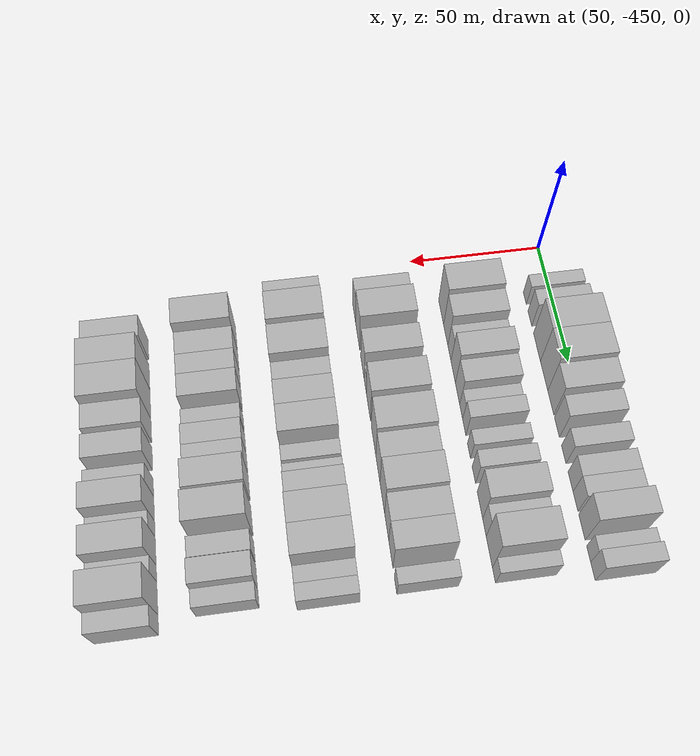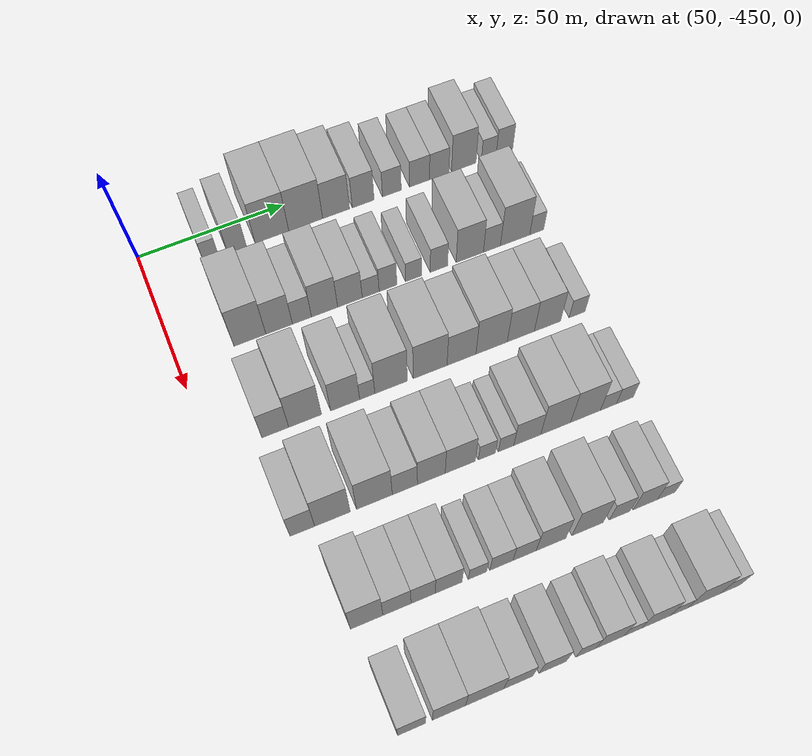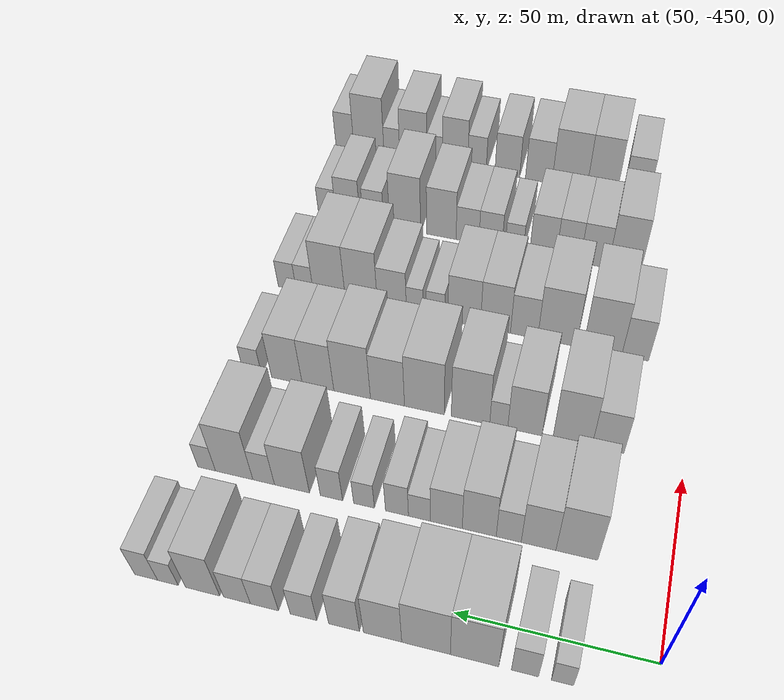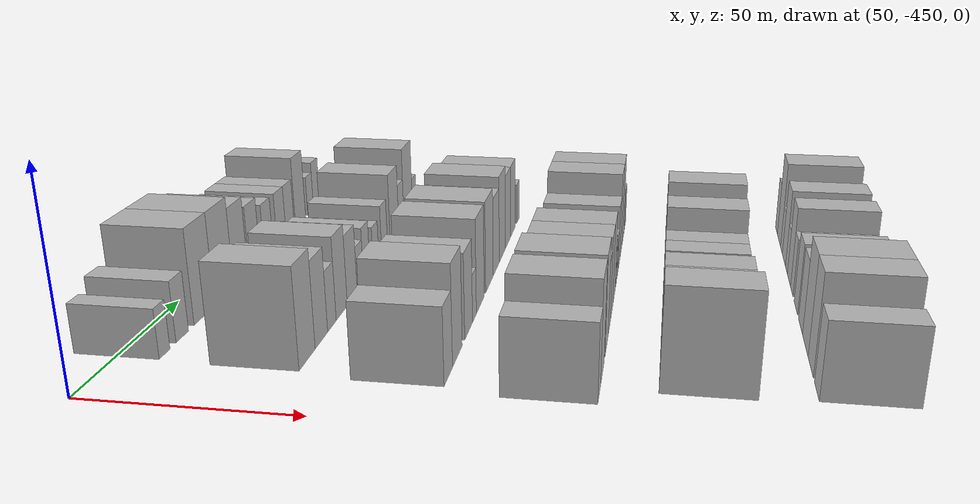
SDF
<sdf version="1.6">
 <world name="default">
  <model name="building_14">
   <static>1</static>
   <pose>50.0000 -428.2487 0 0.000000 0.000000 0.000000</pose>
   <link name="link">
    <pose>0 0 6.00 0 0 0</pose>
    <collision name="collision"><geometry><box><size>20.0000 5.2376 12.0000</size></box></geometry></collision>
    <visual name="visual">
     <cast_shadows>0</cast_shadows>
     <geometry><box><size>20.0000 5.2376 12.0000</size></box></geometry>
     <material>
      <script>
       <uri>model://HANNAS_wall/materials/scripts</uri>
       <uri>model://HANNAS_wall/materials/textures</uri>
       <name>vrc/HANNAS_wall</name>
      </script>
     </material>
    </visual>
   </link>
  </model>
  <model name="building_15">
   <static>1</static>
   <pose>50.0000 -419.3924 0 0.000000 0.000000 0.000000</pose>
   <link name="link">
    <pose>0 0 7.50 0 0 0</pose>
    <collision name="collision"><geometry><box><size>20.0000 6.4750 15.0000</size></box></geometry></collision>
    <visual name="visual">
     <cast_shadows>0</cast_shadows>
     <geometry><box><size>20.0000 6.4750 15.0000</size></box></geometry>
     <material>
      <script>
       <uri>model://HANNAS_wall/materials/scripts</uri>
       <uri>model://HANNAS_wall/materials/textures</uri>
       <name>vrc/HANNAS_wall</name>
      </script>
     </material>
    </visual>
   </link>
  </model>
  <model name="building_16">
   <static>1</static>
   <pose>50.0000 -407.3200 0 0.000000 0.000000 0.000000</pose>
   <link name="link">
    <pose>0 0 12.00 0 0 0</pose>
    <collision name="collision"><geometry><box><size>20.0000 11.6699 24.0000</size></box></geometry></collision>
    <visual name="visual">
     <cast_shadows>0</cast_shadows>
     <geometry><box><size>20.0000 11.6699 24.0000</size></box></geometry>
     <material>
      <script>
       <uri>model://HANNAS_wall/materials/scripts</uri>
       <uri>model://HANNAS_wall/materials/textures</uri>
       <name>vrc/HANNAS_wall</name>
      </script>
     </material>
    </visual>
   </link>
  </model>
  <model name="building_17">
   <static>1</static>
   <pose>50.0000 -395.5400 0 0.000000 0.000000 0.000000</pose>
   <link name="link">
    <pose>0 0 12.00 0 0 0</pose>
    <collision name="collision"><geometry><box><size>20.0000 11.8899 24.0000</size></box></geometry></collision>
    <visual name="visual">
     <cast_shadows>0</cast_shadows>
     <geometry><box><size>20.0000 11.8899 24.0000</size></box></geometry>
     <material>
      <script>
       <uri>model://HANNAS_wall/materials/scripts</uri>
       <uri>model://HANNAS_wall/materials/textures</uri>
       <name>vrc/HANNAS_wall</name>
      </script>
     </material>
    </visual>
   </link>
  </model>
  <model name="building_18">
   <static>1</static>
   <pose>50.0000 -384.8482 0 0.000000 0.000000 0.000000</pose>
   <link name="link">
    <pose>0 0 10.50 0 0 0</pose>
    <collision name="collision"><geometry><box><size>20.0000 9.4937 21.0000</size></box></geometry></collision>
    <visual name="visual">
     <cast_shadows>0</cast_shadows>
     <geometry><box><size>20.0000 9.4937 21.0000</size></box></geometry>
     <material>
      <script>
       <uri>model://HANNAS_wall/materials/scripts</uri>
       <uri>model://HANNAS_wall/materials/textures</uri>
       <name>vrc/HANNAS_wall</name>
      </script>
     </material>
    </visual>
   </link>
  </model>
  <model name="building_19">
   <static>1</static>
   <pose>50.0000 -375.2395 0 0.000000 0.000000 0.000000</pose>
   <link name="link">
    <pose>0 0 9.00 0 0 0</pose>
    <collision name="collision"><geometry><box><size>20.0000 7.7238 18.0000</size></box></geometry></collision>
    <visual name="visual">
     <cast_shadows>0</cast_shadows>
     <geometry><box><size>20.0000 7.7238 18.0000</size></box></geometry>
     <material>
      <script>
       <uri>model://HANNAS_wall/materials/scripts</uri>
       <uri>model://HANNAS_wall/materials/textures</uri>
       <name>vrc/HANNAS_wall</name>
      </script>
     </material>
    </visual>
   </link>
  </model>
  <model name="building_20">
   <static>1</static>
   <pose>50.0000 -365.0089 0 0.000000 0.000000 0.000000</pose>
   <link name="link">
    <pose>0 0 7.50 0 0 0</pose>
    <collision name="collision"><geometry><box><size>20.0000 6.7373 15.0000</size></box></geometry></collision>
    <visual name="visual">
     <cast_shadows>0</cast_shadows>
     <geometry><box><size>20.0000 6.7373 15.0000</size></box></geometry>
     <material>
      <script>
       <uri>model://HANNAS_wall/materials/scripts</uri>
       <uri>model://HANNAS_wall/materials/textures</uri>
       <name>vrc/HANNAS_wall</name>
      </script>
     </material>
    </visual>
   </link>
  </model>
  <model name="building_21">
   <static>1</static>
   <pose>50.0000 -355.0203 0 0.000000 0.000000 0.000000</pose>
   <link name="link">
    <pose>0 0 7.50 0 0 0</pose>
    <collision name="collision"><geometry><box><size>20.0000 7.2400 15.0000</size></box></geometry></collision>
    <visual name="visual">
     <cast_shadows>0</cast_shadows>
     <geometry><box><size>20.0000 7.2400 15.0000</size></box></geometry>
     <material>
      <script>
       <uri>model://HANNAS_wall/materials/scripts</uri>
       <uri>model://HANNAS_wall/materials/textures</uri>
       <name>vrc/HANNAS_wall</name>
      </script>
     </material>
    </visual>
   </link>
  </model>
  <model name="building_22">
   <static>1</static>
   <pose>50.0000 -347.9140 0 0.000000 0.000000 0.000000</pose>
   <link name="link">
    <pose>0 0 7.50 0 0 0</pose>
    <collision name="collision"><geometry><box><size>20.0000 6.9727 15.0000</size></box></geometry></collision>
    <visual name="visual">
     <cast_shadows>0</cast_shadows>
     <geometry><box><size>20.0000 6.9727 15.0000</size></box></geometry>
     <material>
      <script>
       <uri>model://HANNAS_wall/materials/scripts</uri>
       <uri>model://HANNAS_wall/materials/textures</uri>
       <name>vrc/HANNAS_wall</name>
      </script>
     </material>
    </visual>
   </link>
  </model>
  <model name="building_23">
   <static>1</static>
   <pose>50.0000 -338.9517 0 0.000000 0.000000 0.000000</pose>
   <link name="link">
    <pose>0 0 10.50 0 0 0</pose>
    <collision name="collision"><geometry><box><size>20.0000 8.9519 21.0000</size></box></geometry></collision>
    <visual name="visual">
     <cast_shadows>0</cast_shadows>
     <geometry><box><size>20.0000 8.9519 21.0000</size></box></geometry>
     <material>
      <script>
       <uri>model://HANNAS_wall/materials/scripts</uri>
       <uri>model://HANNAS_wall/materials/textures</uri>
       <name>vrc/HANNAS_wall</name>
      </script>
     </material>
    </visual>
   </link>
  </model>
  <model name="building_24">
   <static>1</static>
   <pose>50.0000 -329.7547 0 0.000000 0.000000 0.000000</pose>
   <link name="link">
    <pose>0 0 6.00 0 0 0</pose>
    <collision name="collision"><geometry><box><size>20.0000 5.4421 12.0000</size></box></geometry></collision>
    <visual name="visual">
     <cast_shadows>0</cast_shadows>
     <geometry><box><size>20.0000 5.4421 12.0000</size></box></geometry>
     <material>
      <script>
       <uri>model://HANNAS_wall/materials/scripts</uri>
       <uri>model://HANNAS_wall/materials/textures</uri>
       <name>vrc/HANNAS_wall</name>
      </script>
     </material>
    </visual>
   </link>
  </model>
  <model name="building_25">
   <static>1</static>
   <pose>50.0000 -323.9866 0 0.000000 0.000000 0.000000</pose>
   <link name="link">
    <pose>0 0 7.50 0 0 0</pose>
    <collision name="collision"><geometry><box><size>20.0000 6.0940 15.0000</size></box></geometry></collision>
    <visual name="visual">
     <cast_shadows>0</cast_shadows>
     <geometry><box><size>20.0000 6.0940 15.0000</size></box></geometry>
     <material>
      <script>
       <uri>model://HANNAS_wall/materials/scripts</uri>
       <uri>model://HANNAS_wall/materials/textures</uri>
       <name>vrc/HANNAS_wall</name>
      </script>
     </material>
    </visual>
   </link>
  </model>
  <model name="building_137">
   <static>1</static>
   <pose>82.0000 -426.3502 0 0.000000 0.000000 0.000000</pose>
   <link name="link">
    <pose>0 0 12.00 0 0 0</pose>
    <collision name="collision"><geometry><box><size>20.0000 10.6376 24.0000</size></box></geometry></collision>
    <visual name="visual">
     <cast_shadows>0</cast_shadows>
     <geometry><box><size>20.0000 10.6376 24.0000</size></box></geometry>
     <material>
      <script>
       <uri>model://HANNAS_wall/materials/scripts</uri>
       <uri>model://HANNAS_wall/materials/textures</uri>
       <name>vrc/HANNAS_wall</name>
      </script>
     </material>
    </visual>
   </link>
  </model>
  <model name="building_138">
   <static>1</static>
   <pose>82.0000 -416.5753 0 0.000000 0.000000 0.000000</pose>
   <link name="link">
    <pose>0 0 10.50 0 0 0</pose>
    <collision name="collision"><geometry><box><size>20.0000 8.9122 21.0000</size></box></geometry></collision>
    <visual name="visual">
     <cast_shadows>0</cast_shadows>
     <geometry><box><size>20.0000 8.9122 21.0000</size></box></geometry>
     <material>
      <script>
       <uri>model://HANNAS_wall/materials/scripts</uri>
       <uri>model://HANNAS_wall/materials/textures</uri>
       <name>vrc/HANNAS_wall</name>
      </script>
     </material>
    </visual>
   </link>
  </model>
  <model name="building_139">
   <static>1</static>
   <pose>82.0000 -408.8890 0 0.000000 0.000000 0.000000</pose>
   <link name="link">
    <pose>0 0 7.50 0 0 0</pose>
    <collision name="collision"><geometry><box><size>20.0000 6.4604 15.0000</size></box></geometry></collision>
    <visual name="visual">
     <cast_shadows>0</cast_shadows>
     <geometry><box><size>20.0000 6.4604 15.0000</size></box></geometry>
     <material>
      <script>
       <uri>model://HANNAS_wall/materials/scripts</uri>
       <uri>model://HANNAS_wall/materials/textures</uri>
       <name>vrc/HANNAS_wall</name>
      </script>
     </material>
    </visual>
   </link>
  </model>
  <model name="building_140">
   <static>1</static>
   <pose>82.0000 -401.2230 0 0.000000 0.000000 0.000000</pose>
   <link name="link">
    <pose>0 0 10.50 0 0 0</pose>
    <collision name="collision"><geometry><box><size>20.0000 8.8716 21.0000</size></box></geometry></collision>
    <visual name="visual">
     <cast_shadows>0</cast_shadows>
     <geometry><box><size>20.0000 8.8716 21.0000</size></box></geometry>
     <material>
      <script>
       <uri>model://HANNAS_wall/materials/scripts</uri>
       <uri>model://HANNAS_wall/materials/textures</uri>
       <name>vrc/HANNAS_wall</name>
      </script>
     </material>
    </visual>
   </link>
  </model>
  <model name="building_141">
   <static>1</static>
   <pose>82.0000 -392.5690 0 0.000000 0.000000 0.000000</pose>
   <link name="link">
    <pose>0 0 9.00 0 0 0</pose>
    <collision name="collision"><geometry><box><size>20.0000 8.4366 18.0000</size></box></geometry></collision>
    <visual name="visual">
     <cast_shadows>0</cast_shadows>
     <geometry><box><size>20.0000 8.4366 18.0000</size></box></geometry>
     <material>
      <script>
       <uri>model://HANNAS_wall/materials/scripts</uri>
       <uri>model://HANNAS_wall/materials/textures</uri>
       <name>vrc/HANNAS_wall</name>
      </script>
     </material>
    </visual>
   </link>
  </model>
  <model name="building_142">
   <static>1</static>
   <pose>82.0000 -385.4570 0 0.000000 0.000000 0.000000</pose>
   <link name="link">
    <pose>0 0 6.00 0 0 0</pose>
    <collision name="collision"><geometry><box><size>20.0000 5.7874 12.0000</size></box></geometry></collision>
    <visual name="visual">
     <cast_shadows>0</cast_shadows>
     <geometry><box><size>20.0000 5.7874 12.0000</size></box></geometry>
     <material>
      <script>
       <uri>model://HANNAS_wall/materials/scripts</uri>
       <uri>model://HANNAS_wall/materials/textures</uri>
       <name>vrc/HANNAS_wall</name>
      </script>
     </material>
    </visual>
   </link>
  </model>
  <model name="building_143">
   <static>1</static>
   <pose>82.0000 -379.4896 0 0.000000 0.000000 0.000000</pose>
   <link name="link">
    <pose>0 0 7.50 0 0 0</pose>
    <collision name="collision"><geometry><box><size>20.0000 6.1474 15.0000</size></box></geometry></collision>
    <visual name="visual">
     <cast_shadows>0</cast_shadows>
     <geometry><box><size>20.0000 6.1474 15.0000</size></box></geometry>
     <material>
      <script>
       <uri>model://HANNAS_wall/materials/scripts</uri>
       <uri>model://HANNAS_wall/materials/textures</uri>
       <name>vrc/HANNAS_wall</name>
      </script>
     </material>
    </visual>
   </link>
  </model>
  <model name="building_144">
   <static>1</static>
   <pose>82.0000 -370.6070 0 0.000000 0.000000 0.000000</pose>
   <link name="link">
    <pose>0 0 6.00 0 0 0</pose>
    <collision name="collision"><geometry><box><size>20.0000 5.6177 12.0000</size></box></geometry></collision>
    <visual name="visual">
     <cast_shadows>0</cast_shadows>
     <geometry><box><size>20.0000 5.6177 12.0000</size></box></geometry>
     <material>
      <script>
       <uri>model://HANNAS_wall/materials/scripts</uri>
       <uri>model://HANNAS_wall/materials/textures</uri>
       <name>vrc/HANNAS_wall</name>
      </script>
     </material>
    </visual>
   </link>
  </model>
  <model name="building_145">
   <static>1</static>
   <pose>82.0000 -361.7512 0 0.000000 0.000000 0.000000</pose>
   <link name="link">
    <pose>0 0 7.50 0 0 0</pose>
    <collision name="collision"><geometry><box><size>20.0000 6.0940 15.0000</size></box></geometry></collision>
    <visual name="visual">
     <cast_shadows>0</cast_shadows>
     <geometry><box><size>20.0000 6.0940 15.0000</size></box></geometry>
     <material>
      <script>
       <uri>model://HANNAS_wall/materials/scripts</uri>
       <uri>model://HANNAS_wall/materials/textures</uri>
       <name>vrc/HANNAS_wall</name>
      </script>
     </material>
    </visual>
   </link>
  </model>
  <model name="building_146">
   <static>1</static>
   <pose>82.0000 -350.8652 0 0.000000 0.000000 0.000000</pose>
   <link name="link">
    <pose>0 0 10.50 0 0 0</pose>
    <collision name="collision"><geometry><box><size>20.0000 9.6779 21.0000</size></box></geometry></collision>
    <visual name="visual">
     <cast_shadows>0</cast_shadows>
     <geometry><box><size>20.0000 9.6779 21.0000</size></box></geometry>
     <material>
      <script>
       <uri>model://HANNAS_wall/materials/scripts</uri>
       <uri>model://HANNAS_wall/materials/textures</uri>
       <name>vrc/HANNAS_wall</name>
      </script>
     </material>
    </visual>
   </link>
  </model>
  <model name="building_147">
   <static>1</static>
   <pose>82.0000 -343.0025 0 0.000000 0.000000 0.000000</pose>
   <link name="link">
    <pose>0 0 7.50 0 0 0</pose>
    <collision name="collision"><geometry><box><size>20.0000 6.0475 15.0000</size></box></geometry></collision>
    <visual name="visual">
     <cast_shadows>0</cast_shadows>
     <geometry><box><size>20.0000 6.0475 15.0000</size></box></geometry>
     <material>
      <script>
       <uri>model://HANNAS_wall/materials/scripts</uri>
       <uri>model://HANNAS_wall/materials/textures</uri>
       <name>vrc/HANNAS_wall</name>
      </script>
     </material>
    </visual>
   </link>
  </model>
  <model name="building_148">
   <static>1</static>
   <pose>82.0000 -334.7102 0 0.000000 0.000000 0.000000</pose>
   <link name="link">
    <pose>0 0 12.00 0 0 0</pose>
    <collision name="collision"><geometry><box><size>20.0000 10.5371 24.0000</size></box></geometry></collision>
    <visual name="visual">
     <cast_shadows>0</cast_shadows>
     <geometry><box><size>20.0000 10.5371 24.0000</size></box></geometry>
     <material>
      <script>
       <uri>model://HANNAS_wall/materials/scripts</uri>
       <uri>model://HANNAS_wall/materials/textures</uri>
       <name>vrc/HANNAS_wall</name>
      </script>
     </material>
    </visual>
   </link>
  </model>
  <model name="building_149">
   <static>1</static>
   <pose>82.0000 -326.9293 0 0.000000 0.000000 0.000000</pose>
   <link name="link">
    <pose>0 0 6.00 0 0 0</pose>
    <collision name="collision"><geometry><box><size>20.0000 5.0247 12.0000</size></box></geometry></collision>
    <visual name="visual">
     <cast_shadows>0</cast_shadows>
     <geometry><box><size>20.0000 5.0247 12.0000</size></box></geometry>
     <material>
      <script>
       <uri>model://HANNAS_wall/materials/scripts</uri>
       <uri>model://HANNAS_wall/materials/textures</uri>
       <name>vrc/HANNAS_wall</name>
      </script>
     </material>
    </visual>
   </link>
  </model>
  <model name="building_259">
   <static>1</static>
   <pose>114.0000 -429.5691 0 0.000000 0.000000 0.000000</pose>
   <link name="link">
    <pose>0 0 9.00 0 0 0</pose>
    <collision name="collision"><geometry><box><size>20.0000 8.6871 18.0000</size></box></geometry></collision>
    <visual name="visual">
     <cast_shadows>0</cast_shadows>
     <geometry><box><size>20.0000 8.6871 18.0000</size></box></geometry>
     <material>
      <script>
       <uri>model://HANNAS_wall/materials/scripts</uri>
       <uri>model://HANNAS_wall/materials/textures</uri>
       <name>vrc/HANNAS_wall</name>
      </script>
     </material>
    </visual>
   </link>
  </model>
  <model name="building_260">
   <static>1</static>
   <pose>114.0000 -419.8844 0 0.000000 0.000000 0.000000</pose>
   <link name="link">
    <pose>0 0 12.00 0 0 0</pose>
    <collision name="collision"><geometry><box><size>20.0000 10.6823 24.0000</size></box></geometry></collision>
    <visual name="visual">
     <cast_shadows>0</cast_shadows>
     <geometry><box><size>20.0000 10.6823 24.0000</size></box></geometry>
     <material>
      <script>
       <uri>model://HANNAS_wall/materials/scripts</uri>
       <uri>model://HANNAS_wall/materials/textures</uri>
       <name>vrc/HANNAS_wall</name>
      </script>
     </material>
    </visual>
   </link>
  </model>
  <model name="building_261">
   <static>1</static>
   <pose>114.0000 -406.7684 0 0.000000 0.000000 0.000000</pose>
   <link name="link">
    <pose>0 0 10.50 0 0 0</pose>
    <collision name="collision"><geometry><box><size>20.0000 9.5498 21.0000</size></box></geometry></collision>
    <visual name="visual">
     <cast_shadows>0</cast_shadows>
     <geometry><box><size>20.0000 9.5498 21.0000</size></box></geometry>
     <material>
      <script>
       <uri>model://HANNAS_wall/materials/scripts</uri>
       <uri>model://HANNAS_wall/materials/textures</uri>
       <name>vrc/HANNAS_wall</name>
      </script>
     </material>
    </visual>
   </link>
  </model>
  <model name="building_262">
   <static>1</static>
   <pose>114.0000 -399.4771 0 0.000000 0.000000 0.000000</pose>
   <link name="link">
    <pose>0 0 6.00 0 0 0</pose>
    <collision name="collision"><geometry><box><size>20.0000 5.0327 12.0000</size></box></geometry></collision>
    <visual name="visual">
     <cast_shadows>0</cast_shadows>
     <geometry><box><size>20.0000 5.0327 12.0000</size></box></geometry>
     <material>
      <script>
       <uri>model://HANNAS_wall/materials/scripts</uri>
       <uri>model://HANNAS_wall/materials/textures</uri>
       <name>vrc/HANNAS_wall</name>
      </script>
     </material>
    </visual>
   </link>
  </model>
  <model name="building_263">
   <static>1</static>
   <pose>114.0000 -391.5408 0 0.000000 0.000000 0.000000</pose>
   <link name="link">
    <pose>0 0 12.00 0 0 0</pose>
    <collision name="collision"><geometry><box><size>20.0000 10.8399 24.0000</size></box></geometry></collision>
    <visual name="visual">
     <cast_shadows>0</cast_shadows>
     <geometry><box><size>20.0000 10.8399 24.0000</size></box></geometry>
     <material>
      <script>
       <uri>model://HANNAS_wall/materials/scripts</uri>
       <uri>model://HANNAS_wall/materials/textures</uri>
       <name>vrc/HANNAS_wall</name>
      </script>
     </material>
    </visual>
   </link>
  </model>
  <model name="building_264">
   <static>1</static>
   <pose>114.0000 -378.4195 0 0.000000 0.000000 0.000000</pose>
   <link name="link">
    <pose>0 0 12.00 0 0 0</pose>
    <collision name="collision"><geometry><box><size>20.0000 11.4025 24.0000</size></box></geometry></collision>
    <visual name="visual">
     <cast_shadows>0</cast_shadows>
     <geometry><box><size>20.0000 11.4025 24.0000</size></box></geometry>
     <material>
      <script>
       <uri>model://HANNAS_wall/materials/scripts</uri>
       <uri>model://HANNAS_wall/materials/textures</uri>
       <name>vrc/HANNAS_wall</name>
      </script>
     </material>
    </visual>
   </link>
  </model>
  <model name="building_265">
   <static>1</static>
   <pose>114.0000 -367.7906 0 0.000000 0.000000 0.000000</pose>
   <link name="link">
    <pose>0 0 10.50 0 0 0</pose>
    <collision name="collision"><geometry><box><size>20.0000 9.8554 21.0000</size></box></geometry></collision>
    <visual name="visual">
     <cast_shadows>0</cast_shadows>
     <geometry><box><size>20.0000 9.8554 21.0000</size></box></geometry>
     <material>
      <script>
       <uri>model://HANNAS_wall/materials/scripts</uri>
       <uri>model://HANNAS_wall/materials/textures</uri>
       <name>vrc/HANNAS_wall</name>
      </script>
     </material>
    </visual>
   </link>
  </model>
  <model name="building_266">
   <static>1</static>
   <pose>114.0000 -357.4880 0 0.000000 0.000000 0.000000</pose>
   <link name="link">
    <pose>0 0 12.00 0 0 0</pose>
    <collision name="collision"><geometry><box><size>20.0000 10.7498 24.0000</size></box></geometry></collision>
    <visual name="visual">
     <cast_shadows>0</cast_shadows>
     <geometry><box><size>20.0000 10.7498 24.0000</size></box></geometry>
     <material>
      <script>
       <uri>model://HANNAS_wall/materials/scripts</uri>
       <uri>model://HANNAS_wall/materials/textures</uri>
       <name>vrc/HANNAS_wall</name>
      </script>
     </material>
    </visual>
   </link>
  </model>
  <model name="building_267">
   <static>1</static>
   <pose>114.0000 -347.4292 0 0.000000 0.000000 0.000000</pose>
   <link name="link">
    <pose>0 0 10.50 0 0 0</pose>
    <collision name="collision"><geometry><box><size>20.0000 9.3677 21.0000</size></box></geometry></collision>
    <visual name="visual">
     <cast_shadows>0</cast_shadows>
     <geometry><box><size>20.0000 9.3677 21.0000</size></box></geometry>
     <material>
      <script>
       <uri>model://HANNAS_wall/materials/scripts</uri>
       <uri>model://HANNAS_wall/materials/textures</uri>
       <name>vrc/HANNAS_wall</name>
      </script>
     </material>
    </visual>
   </link>
  </model>
  <model name="building_268">
   <static>1</static>
   <pose>114.0000 -338.1658 0 0.000000 0.000000 0.000000</pose>
   <link name="link">
    <pose>0 0 10.50 0 0 0</pose>
    <collision name="collision"><geometry><box><size>20.0000 9.1593 21.0000</size></box></geometry></collision>
    <visual name="visual">
     <cast_shadows>0</cast_shadows>
     <geometry><box><size>20.0000 9.1593 21.0000</size></box></geometry>
     <material>
      <script>
       <uri>model://HANNAS_wall/materials/scripts</uri>
       <uri>model://HANNAS_wall/materials/textures</uri>
       <name>vrc/HANNAS_wall</name>
      </script>
     </material>
    </visual>
   </link>
  </model>
  <model name="building_269">
   <static>1</static>
   <pose>114.0000 -327.7940 0 0.000000 0.000000 0.000000</pose>
   <link name="link">
    <pose>0 0 6.00 0 0 0</pose>
    <collision name="collision"><geometry><box><size>20.0000 5.5844 12.0000</size></box></geometry></collision>
    <visual name="visual">
     <cast_shadows>0</cast_shadows>
     <geometry><box><size>20.0000 5.5844 12.0000</size></box></geometry>
     <material>
      <script>
       <uri>model://HANNAS_wall/materials/scripts</uri>
       <uri>model://HANNAS_wall/materials/textures</uri>
       <name>vrc/HANNAS_wall</name>
      </script>
     </material>
    </visual>
   </link>
  </model>
  <model name="building_382">
   <static>1</static>
   <pose>146.0000 -432.8239 0 0.000000 0.000000 0.000000</pose>
   <link name="link">
    <pose>0 0 9.00 0 0 0</pose>
    <collision name="collision"><geometry><box><size>20.0000 7.7400 18.0000</size></box></geometry></collision>
    <visual name="visual">
     <cast_shadows>0</cast_shadows>
     <geometry><box><size>20.0000 7.7400 18.0000</size></box></geometry>
     <material>
      <script>
       <uri>model://HANNAS_wall/materials/scripts</uri>
       <uri>model://HANNAS_wall/materials/textures</uri>
       <name>vrc/HANNAS_wall</name>
      </script>
     </material>
    </visual>
   </link>
  </model>
  <model name="building_383">
   <static>1</static>
   <pose>146.0000 -423.3386 0 0.000000 0.000000 0.000000</pose>
   <link name="link">
    <pose>0 0 12.00 0 0 0</pose>
    <collision name="collision"><geometry><box><size>20.0000 11.2307 24.0000</size></box></geometry></collision>
    <visual name="visual">
     <cast_shadows>0</cast_shadows>
     <geometry><box><size>20.0000 11.2307 24.0000</size></box></geometry>
     <material>
      <script>
       <uri>model://HANNAS_wall/materials/scripts</uri>
       <uri>model://HANNAS_wall/materials/textures</uri>
       <name>vrc/HANNAS_wall</name>
      </script>
     </material>
    </visual>
   </link>
  </model>
  <model name="building_384">
   <static>1</static>
   <pose>146.0000 -410.0099 0 0.000000 0.000000 0.000000</pose>
   <link name="link">
    <pose>0 0 12.00 0 0 0</pose>
    <collision name="collision"><geometry><box><size>20.0000 11.4266 24.0000</size></box></geometry></collision>
    <visual name="visual">
     <cast_shadows>0</cast_shadows>
     <geometry><box><size>20.0000 11.4266 24.0000</size></box></geometry>
     <material>
      <script>
       <uri>model://HANNAS_wall/materials/scripts</uri>
       <uri>model://HANNAS_wall/materials/textures</uri>
       <name>vrc/HANNAS_wall</name>
      </script>
     </material>
    </visual>
   </link>
  </model>
  <model name="building_385">
   <static>1</static>
   <pose>146.0000 -400.2371 0 0.000000 0.000000 0.000000</pose>
   <link name="link">
    <pose>0 0 9.00 0 0 0</pose>
    <collision name="collision"><geometry><box><size>20.0000 8.1191 18.0000</size></box></geometry></collision>
    <visual name="visual">
     <cast_shadows>0</cast_shadows>
     <geometry><box><size>20.0000 8.1191 18.0000</size></box></geometry>
     <material>
      <script>
       <uri>model://HANNAS_wall/materials/scripts</uri>
       <uri>model://HANNAS_wall/materials/textures</uri>
       <name>vrc/HANNAS_wall</name>
      </script>
     </material>
    </visual>
   </link>
  </model>
  <model name="building_386">
   <static>1</static>
   <pose>146.0000 -391.6659 0 0.000000 0.000000 0.000000</pose>
   <link name="link">
    <pose>0 0 10.50 0 0 0</pose>
    <collision name="collision"><geometry><box><size>20.0000 9.0233 21.0000</size></box></geometry></collision>
    <visual name="visual">
     <cast_shadows>0</cast_shadows>
     <geometry><box><size>20.0000 9.0233 21.0000</size></box></geometry>
     <material>
      <script>
       <uri>model://HANNAS_wall/materials/scripts</uri>
       <uri>model://HANNAS_wall/materials/textures</uri>
       <name>vrc/HANNAS_wall</name>
      </script>
     </material>
    </visual>
   </link>
  </model>
  <model name="building_387">
   <static>1</static>
   <pose>146.0000 -382.2234 0 0.000000 0.000000 0.000000</pose>
   <link name="link">
    <pose>0 0 10.50 0 0 0</pose>
    <collision name="collision"><geometry><box><size>20.0000 9.8617 21.0000</size></box></geometry></collision>
    <visual name="visual">
     <cast_shadows>0</cast_shadows>
     <geometry><box><size>20.0000 9.8617 21.0000</size></box></geometry>
     <material>
      <script>
       <uri>model://HANNAS_wall/materials/scripts</uri>
       <uri>model://HANNAS_wall/materials/textures</uri>
       <name>vrc/HANNAS_wall</name>
      </script>
     </material>
    </visual>
   </link>
  </model>
  <model name="building_388">
   <static>1</static>
   <pose>146.0000 -373.4801 0 0.000000 0.000000 0.000000</pose>
   <link name="link">
    <pose>0 0 6.00 0 0 0</pose>
    <collision name="collision"><geometry><box><size>20.0000 5.6248 12.0000</size></box></geometry></collision>
    <visual name="visual">
     <cast_shadows>0</cast_shadows>
     <geometry><box><size>20.0000 5.6248 12.0000</size></box></geometry>
     <material>
      <script>
       <uri>model://HANNAS_wall/materials/scripts</uri>
       <uri>model://HANNAS_wall/materials/textures</uri>
       <name>vrc/HANNAS_wall</name>
      </script>
     </material>
    </visual>
   </link>
  </model>
  <model name="building_389">
   <static>1</static>
   <pose>146.0000 -367.1079 0 0.000000 0.000000 0.000000</pose>
   <link name="link">
    <pose>0 0 6.00 0 0 0</pose>
    <collision name="collision"><geometry><box><size>20.0000 5.1198 12.0000</size></box></geometry></collision>
    <visual name="visual">
     <cast_shadows>0</cast_shadows>
     <geometry><box><size>20.0000 5.1198 12.0000</size></box></geometry>
     <material>
      <script>
       <uri>model://HANNAS_wall/materials/scripts</uri>
       <uri>model://HANNAS_wall/materials/textures</uri>
       <name>vrc/HANNAS_wall</name>
      </script>
     </material>
    </visual>
   </link>
  </model>
  <model name="building_390">
   <static>1</static>
   <pose>146.0000 -360.0568 0 0.000000 0.000000 0.000000</pose>
   <link name="link">
    <pose>0 0 9.00 0 0 0</pose>
    <collision name="collision"><geometry><box><size>20.0000 8.9822 18.0000</size></box></geometry></collision>
    <visual name="visual">
     <cast_shadows>0</cast_shadows>
     <geometry><box><size>20.0000 8.9822 18.0000</size></box></geometry>
     <material>
      <script>
       <uri>model://HANNAS_wall/materials/scripts</uri>
       <uri>model://HANNAS_wall/materials/textures</uri>
       <name>vrc/HANNAS_wall</name>
      </script>
     </material>
    </visual>
   </link>
  </model>
  <model name="building_391">
   <static>1</static>
   <pose>146.0000 -350.5392 0 0.000000 0.000000 0.000000</pose>
   <link name="link">
    <pose>0 0 12.00 0 0 0</pose>
    <collision name="collision"><geometry><box><size>20.0000 10.0530 24.0000</size></box></geometry></collision>
    <visual name="visual">
     <cast_shadows>0</cast_shadows>
     <geometry><box><size>20.0000 10.0530 24.0000</size></box></geometry>
     <material>
      <script>
       <uri>model://HANNAS_wall/materials/scripts</uri>
       <uri>model://HANNAS_wall/materials/textures</uri>
       <name>vrc/HANNAS_wall</name>
      </script>
     </material>
    </visual>
   </link>
  </model>
  <model name="building_392">
   <static>1</static>
   <pose>146.0000 -340.4458 0 0.000000 0.000000 0.000000</pose>
   <link name="link">
    <pose>0 0 12.00 0 0 0</pose>
    <collision name="collision"><geometry><box><size>20.0000 10.1337 24.0000</size></box></geometry></collision>
    <visual name="visual">
     <cast_shadows>0</cast_shadows>
     <geometry><box><size>20.0000 10.1337 24.0000</size></box></geometry>
     <material>
      <script>
       <uri>model://HANNAS_wall/materials/scripts</uri>
       <uri>model://HANNAS_wall/materials/textures</uri>
       <name>vrc/HANNAS_wall</name>
      </script>
     </material>
    </visual>
   </link>
  </model>
  <model name="building_393">
   <static>1</static>
   <pose>146.0000 -332.6156 0 0.000000 0.000000 0.000000</pose>
   <link name="link">
    <pose>0 0 6.00 0 0 0</pose>
    <collision name="collision"><geometry><box><size>20.0000 5.5266 12.0000</size></box></geometry></collision>
    <visual name="visual">
     <cast_shadows>0</cast_shadows>
     <geometry><box><size>20.0000 5.5266 12.0000</size></box></geometry>
     <material>
      <script>
       <uri>model://HANNAS_wall/materials/scripts</uri>
       <uri>model://HANNAS_wall/materials/textures</uri>
       <name>vrc/HANNAS_wall</name>
      </script>
     </material>
    </visual>
   </link>
  </model>
  <model name="building_394">
   <static>1</static>
   <pose>146.0000 -326.9777 0 0.000000 0.000000 0.000000</pose>
   <link name="link">
    <pose>0 0 6.00 0 0 0</pose>
    <collision name="collision"><geometry><box><size>20.0000 5.7492 12.0000</size></box></geometry></collision>
    <visual name="visual">
     <cast_shadows>0</cast_shadows>
     <geometry><box><size>20.0000 5.7492 12.0000</size></box></geometry>
     <material>
      <script>
       <uri>model://HANNAS_wall/materials/scripts</uri>
       <uri>model://HANNAS_wall/materials/textures</uri>
       <name>vrc/HANNAS_wall</name>
      </script>
     </material>
    </visual>
   </link>
  </model>
  <model name="building_501">
   <static>1</static>
   <pose>178.0000 -425.2961 0 0.000000 0.000000 0.000000</pose>
   <link name="link">
    <pose>0 0 12.00 0 0 0</pose>
    <collision name="collision"><geometry><box><size>20.0000 9.9869 24.0000</size></box></geometry></collision>
    <visual name="visual">
     <cast_shadows>0</cast_shadows>
     <geometry><box><size>20.0000 9.9869 24.0000</size></box></geometry>
     <material>
      <script>
       <uri>model://HANNAS_wall/materials/scripts</uri>
       <uri>model://HANNAS_wall/materials/textures</uri>
       <name>vrc/HANNAS_wall</name>
      </script>
     </material>
    </visual>
   </link>
  </model>
  <model name="building_502">
   <static>1</static>
   <pose>178.0000 -415.9656 0 0.000000 0.000000 0.000000</pose>
   <link name="link">
    <pose>0 0 9.00 0 0 0</pose>
    <collision name="collision"><geometry><box><size>20.0000 8.6742 18.0000</size></box></geometry></collision>
    <visual name="visual">
     <cast_shadows>0</cast_shadows>
     <geometry><box><size>20.0000 8.6742 18.0000</size></box></geometry>
     <material>
      <script>
       <uri>model://HANNAS_wall/materials/scripts</uri>
       <uri>model://HANNAS_wall/materials/textures</uri>
       <name>vrc/HANNAS_wall</name>
      </script>
     </material>
    </visual>
   </link>
  </model>
  <model name="building_503">
   <static>1</static>
   <pose>178.0000 -407.8666 0 0.000000 0.000000 0.000000</pose>
   <link name="link">
    <pose>0 0 9.00 0 0 0</pose>
    <collision name="collision"><geometry><box><size>20.0000 7.5238 18.0000</size></box></geometry></collision>
    <visual name="visual">
     <cast_shadows>0</cast_shadows>
     <geometry><box><size>20.0000 7.5238 18.0000</size></box></geometry>
     <material>
      <script>
       <uri>model://HANNAS_wall/materials/scripts</uri>
       <uri>model://HANNAS_wall/materials/textures</uri>
       <name>vrc/HANNAS_wall</name>
      </script>
     </material>
    </visual>
   </link>
  </model>
  <model name="building_504">
   <static>1</static>
   <pose>178.0000 -399.9060 0 0.000000 0.000000 0.000000</pose>
   <link name="link">
    <pose>0 0 9.00 0 0 0</pose>
    <collision name="collision"><geometry><box><size>20.0000 8.3974 18.0000</size></box></geometry></collision>
    <visual name="visual">
     <cast_shadows>0</cast_shadows>
     <geometry><box><size>20.0000 8.3974 18.0000</size></box></geometry>
     <material>
      <script>
       <uri>model://HANNAS_wall/materials/scripts</uri>
       <uri>model://HANNAS_wall/materials/textures</uri>
       <name>vrc/HANNAS_wall</name>
      </script>
     </material>
    </visual>
   </link>
  </model>
  <model name="building_505">
   <static>1</static>
   <pose>178.0000 -390.8069 0 0.000000 0.000000 0.000000</pose>
   <link name="link">
    <pose>0 0 6.00 0 0 0</pose>
    <collision name="collision"><geometry><box><size>20.0000 5.8007 12.0000</size></box></geometry></collision>
    <visual name="visual">
     <cast_shadows>0</cast_shadows>
     <geometry><box><size>20.0000 5.8007 12.0000</size></box></geometry>
     <material>
      <script>
       <uri>model://HANNAS_wall/materials/scripts</uri>
       <uri>model://HANNAS_wall/materials/textures</uri>
       <name>vrc/HANNAS_wall</name>
      </script>
     </material>
    </visual>
   </link>
  </model>
  <model name="building_506">
   <static>1</static>
   <pose>178.0000 -383.1959 0 0.000000 0.000000 0.000000</pose>
   <link name="link">
    <pose>0 0 7.50 0 0 0</pose>
    <collision name="collision"><geometry><box><size>20.0000 7.4213 15.0000</size></box></geometry></collision>
    <visual name="visual">
     <cast_shadows>0</cast_shadows>
     <geometry><box><size>20.0000 7.4213 15.0000</size></box></geometry>
     <material>
      <script>
       <uri>model://HANNAS_wall/materials/scripts</uri>
       <uri>model://HANNAS_wall/materials/textures</uri>
       <name>vrc/HANNAS_wall</name>
      </script>
     </material>
    </visual>
   </link>
  </model>
  <model name="building_507">
   <static>1</static>
   <pose>178.0000 -375.7824 0 0.000000 0.000000 0.000000</pose>
   <link name="link">
    <pose>0 0 7.50 0 0 0</pose>
    <collision name="collision"><geometry><box><size>20.0000 7.4056 15.0000</size></box></geometry></collision>
    <visual name="visual">
     <cast_shadows>0</cast_shadows>
     <geometry><box><size>20.0000 7.4056 15.0000</size></box></geometry>
     <material>
      <script>
       <uri>model://HANNAS_wall/materials/scripts</uri>
       <uri>model://HANNAS_wall/materials/textures</uri>
       <name>vrc/HANNAS_wall</name>
      </script>
     </material>
    </visual>
   </link>
  </model>
  <model name="building_508">
   <static>1</static>
   <pose>178.0000 -367.2710 0 0.000000 0.000000 0.000000</pose>
   <link name="link">
    <pose>0 0 10.50 0 0 0</pose>
    <collision name="collision"><geometry><box><size>20.0000 9.6172 21.0000</size></box></geometry></collision>
    <visual name="visual">
     <cast_shadows>0</cast_shadows>
     <geometry><box><size>20.0000 9.6172 21.0000</size></box></geometry>
     <material>
      <script>
       <uri>model://HANNAS_wall/materials/scripts</uri>
       <uri>model://HANNAS_wall/materials/textures</uri>
       <name>vrc/HANNAS_wall</name>
      </script>
     </material>
    </visual>
   </link>
  </model>
  <model name="building_509">
   <static>1</static>
   <pose>178.0000 -355.3560 0 0.000000 0.000000 0.000000</pose>
   <link name="link">
    <pose>0 0 12.00 0 0 0</pose>
    <collision name="collision"><geometry><box><size>20.0000 10.2130 24.0000</size></box></geometry></collision>
    <visual name="visual">
     <cast_shadows>0</cast_shadows>
     <geometry><box><size>20.0000 10.2130 24.0000</size></box></geometry>
     <material>
      <script>
       <uri>model://HANNAS_wall/materials/scripts</uri>
       <uri>model://HANNAS_wall/materials/textures</uri>
       <name>vrc/HANNAS_wall</name>
      </script>
     </material>
    </visual>
   </link>
  </model>
  <model name="building_510">
   <static>1</static>
   <pose>178.0000 -344.8242 0 0.000000 0.000000 0.000000</pose>
   <link name="link">
    <pose>0 0 7.50 0 0 0</pose>
    <collision name="collision"><geometry><box><size>20.0000 6.8506 15.0000</size></box></geometry></collision>
    <visual name="visual">
     <cast_shadows>0</cast_shadows>
     <geometry><box><size>20.0000 6.8506 15.0000</size></box></geometry>
     <material>
      <script>
       <uri>model://HANNAS_wall/materials/scripts</uri>
       <uri>model://HANNAS_wall/materials/textures</uri>
       <name>vrc/HANNAS_wall</name>
      </script>
     </material>
    </visual>
   </link>
  </model>
  <model name="building_511">
   <static>1</static>
   <pose>178.0000 -336.3525 0 0.000000 0.000000 0.000000</pose>
   <link name="link">
    <pose>0 0 9.00 0 0 0</pose>
    <collision name="collision"><geometry><box><size>20.0000 8.0928 18.0000</size></box></geometry></collision>
    <visual name="visual">
     <cast_shadows>0</cast_shadows>
     <geometry><box><size>20.0000 8.0928 18.0000</size></box></geometry>
     <material>
      <script>
       <uri>model://HANNAS_wall/materials/scripts</uri>
       <uri>model://HANNAS_wall/materials/textures</uri>
       <name>vrc/HANNAS_wall</name>
      </script>
     </material>
    </visual>
   </link>
  </model>
  <model name="building_512">
   <static>1</static>
   <pose>178.0000 -329.3381 0 0.000000 0.000000 0.000000</pose>
   <link name="link">
    <pose>0 0 6.00 0 0 0</pose>
    <collision name="collision"><geometry><box><size>20.0000 5.9359 12.0000</size></box></geometry></collision>
    <visual name="visual">
     <cast_shadows>0</cast_shadows>
     <geometry><box><size>20.0000 5.9359 12.0000</size></box></geometry>
     <material>
      <script>
       <uri>model://HANNAS_wall/materials/scripts</uri>
       <uri>model://HANNAS_wall/materials/textures</uri>
       <name>vrc/HANNAS_wall</name>
      </script>
     </material>
    </visual>
   </link>
  </model>
  <model name="building_620">
   <static>1</static>
   <pose>210.0000 -424.8011 0 0.000000 0.000000 0.000000</pose>
   <link name="link">
    <pose>0 0 9.00 0 0 0</pose>
    <collision name="collision"><geometry><box><size>20.0000 8.3621 18.0000</size></box></geometry></collision>
    <visual name="visual">
     <cast_shadows>0</cast_shadows>
     <geometry><box><size>20.0000 8.3621 18.0000</size></box></geometry>
     <material>
      <script>
       <uri>model://HANNAS_wall/materials/scripts</uri>
       <uri>model://HANNAS_wall/materials/textures</uri>
       <name>vrc/HANNAS_wall</name>
      </script>
     </material>
    </visual>
   </link>
  </model>
  <model name="building_621">
   <static>1</static>
   <pose>210.0000 -413.6539 0 0.000000 0.000000 0.000000</pose>
   <link name="link">
    <pose>0 0 12.00 0 0 0</pose>
    <collision name="collision"><geometry><box><size>20.0000 9.9323 24.0000</size></box></geometry></collision>
    <visual name="visual">
     <cast_shadows>0</cast_shadows>
     <geometry><box><size>20.0000 9.9323 24.0000</size></box></geometry>
     <material>
      <script>
       <uri>model://HANNAS_wall/materials/scripts</uri>
       <uri>model://HANNAS_wall/materials/textures</uri>
       <name>vrc/HANNAS_wall</name>
      </script>
     </material>
    </visual>
   </link>
  </model>
  <model name="building_622">
   <static>1</static>
   <pose>210.0000 -402.8702 0 0.000000 0.000000 0.000000</pose>
   <link name="link">
    <pose>0 0 12.00 0 0 0</pose>
    <collision name="collision"><geometry><box><size>20.0000 11.6351 24.0000</size></box></geometry></collision>
    <visual name="visual">
     <cast_shadows>0</cast_shadows>
     <geometry><box><size>20.0000 11.6351 24.0000</size></box></geometry>
     <material>
      <script>
       <uri>model://HANNAS_wall/materials/scripts</uri>
       <uri>model://HANNAS_wall/materials/textures</uri>
       <name>vrc/HANNAS_wall</name>
      </script>
     </material>
    </visual>
   </link>
  </model>
  <model name="building_623">
   <static>1</static>
   <pose>210.0000 -392.5844 0 0.000000 0.000000 0.000000</pose>
   <link name="link">
    <pose>0 0 9.00 0 0 0</pose>
    <collision name="collision"><geometry><box><size>20.0000 8.9366 18.0000</size></box></geometry></collision>
    <visual name="visual">
     <cast_shadows>0</cast_shadows>
     <geometry><box><size>20.0000 8.9366 18.0000</size></box></geometry>
     <material>
      <script>
       <uri>model://HANNAS_wall/materials/scripts</uri>
       <uri>model://HANNAS_wall/materials/textures</uri>
       <name>vrc/HANNAS_wall</name>
      </script>
     </material>
    </visual>
   </link>
  </model>
  <model name="building_624">
   <static>1</static>
   <pose>210.0000 -381.9148 0 0.000000 0.000000 0.000000</pose>
   <link name="link">
    <pose>0 0 9.00 0 0 0</pose>
    <collision name="collision"><geometry><box><size>20.0000 8.4025 18.0000</size></box></geometry></collision>
    <visual name="visual">
     <cast_shadows>0</cast_shadows>
     <geometry><box><size>20.0000 8.4025 18.0000</size></box></geometry>
     <material>
      <script>
       <uri>model://HANNAS_wall/materials/scripts</uri>
       <uri>model://HANNAS_wall/materials/textures</uri>
       <name>vrc/HANNAS_wall</name>
      </script>
     </material>
    </visual>
   </link>
  </model>
  <model name="building_625">
   <static>1</static>
   <pose>210.0000 -371.5420 0 0.000000 0.000000 0.000000</pose>
   <link name="link">
    <pose>0 0 7.50 0 0 0</pose>
    <collision name="collision"><geometry><box><size>20.0000 6.3432 15.0000</size></box></geometry></collision>
    <visual name="visual">
     <cast_shadows>0</cast_shadows>
     <geometry><box><size>20.0000 6.3432 15.0000</size></box></geometry>
     <material>
      <script>
       <uri>model://HANNAS_wall/materials/scripts</uri>
       <uri>model://HANNAS_wall/materials/textures</uri>
       <name>vrc/HANNAS_wall</name>
      </script>
     </material>
    </visual>
   </link>
  </model>
  <model name="building_626">
   <static>1</static>
   <pose>210.0000 -363.9707 0 0.000000 0.000000 0.000000</pose>
   <link name="link">
    <pose>0 0 10.50 0 0 0</pose>
    <collision name="collision"><geometry><box><size>20.0000 8.7994 21.0000</size></box></geometry></collision>
    <visual name="visual">
     <cast_shadows>0</cast_shadows>
     <geometry><box><size>20.0000 8.7994 21.0000</size></box></geometry>
     <material>
      <script>
       <uri>model://HANNAS_wall/materials/scripts</uri>
       <uri>model://HANNAS_wall/materials/textures</uri>
       <name>vrc/HANNAS_wall</name>
      </script>
     </material>
    </visual>
   </link>
  </model>
  <model name="building_627">
   <static>1</static>
   <pose>210.0000 -356.8843 0 0.000000 0.000000 0.000000</pose>
   <link name="link">
    <pose>0 0 6.00 0 0 0</pose>
    <collision name="collision"><geometry><box><size>20.0000 5.3733 12.0000</size></box></geometry></collision>
    <visual name="visual">
     <cast_shadows>0</cast_shadows>
     <geometry><box><size>20.0000 5.3733 12.0000</size></box></geometry>
     <material>
      <script>
       <uri>model://HANNAS_wall/materials/scripts</uri>
       <uri>model://HANNAS_wall/materials/textures</uri>
       <name>vrc/HANNAS_wall</name>
      </script>
     </material>
    </visual>
   </link>
  </model>
  <model name="building_628">
   <static>1</static>
   <pose>210.0000 -349.4419 0 0.000000 0.000000 0.000000</pose>
   <link name="link">
    <pose>0 0 10.50 0 0 0</pose>
    <collision name="collision"><geometry><box><size>20.0000 9.5115 21.0000</size></box></geometry></collision>
    <visual name="visual">
     <cast_shadows>0</cast_shadows>
     <geometry><box><size>20.0000 9.5115 21.0000</size></box></geometry>
     <material>
      <script>
       <uri>model://HANNAS_wall/materials/scripts</uri>
       <uri>model://HANNAS_wall/materials/textures</uri>
       <name>vrc/HANNAS_wall</name>
      </script>
     </material>
    </visual>
   </link>
  </model>
  <model name="building_629">
   <static>1</static>
   <pose>210.0000 -341.9235 0 0.000000 0.000000 0.000000</pose>
   <link name="link">
    <pose>0 0 6.00 0 0 0</pose>
    <collision name="collision"><geometry><box><size>20.0000 5.5253 12.0000</size></box></geometry></collision>
    <visual name="visual">
     <cast_shadows>0</cast_shadows>
     <geometry><box><size>20.0000 5.5253 12.0000</size></box></geometry>
     <material>
      <script>
       <uri>model://HANNAS_wall/materials/scripts</uri>
       <uri>model://HANNAS_wall/materials/textures</uri>
       <name>vrc/HANNAS_wall</name>
      </script>
     </material>
    </visual>
   </link>
  </model>
  <model name="building_630">
   <static>1</static>
   <pose>210.0000 -333.8120 0 0.000000 0.000000 0.000000</pose>
   <link name="link">
    <pose>0 0 12.00 0 0 0</pose>
    <collision name="collision"><geometry><box><size>20.0000 10.6976 24.0000</size></box></geometry></collision>
    <visual name="visual">
     <cast_shadows>0</cast_shadows>
     <geometry><box><size>20.0000 10.6976 24.0000</size></box></geometry>
     <material>
      <script>
       <uri>model://HANNAS_wall/materials/scripts</uri>
       <uri>model://HANNAS_wall/materials/textures</uri>
       <name>vrc/HANNAS_wall</name>
      </script>
     </material>
    </visual>
   </link>
  </model>
  <model name="building_631">
   <static>1</static>
   <pose>210.0000 -325.2403 0 0.000000 0.000000 0.000000</pose>
   <link name="link">
    <pose>0 0 7.50 0 0 0</pose>
    <collision name="collision"><geometry><box><size>20.0000 6.4458 15.0000</size></box></geometry></collision>
    <visual name="visual">
     <cast_shadows>0</cast_shadows>
     <geometry><box><size>20.0000 6.4458 15.0000</size></box></geometry>
     <material>
      <script>
       <uri>model://HANNAS_wall/materials/scripts</uri>
       <uri>model://HANNAS_wall/materials/textures</uri>
       <name>vrc/HANNAS_wall</name>
      </script>
     </material>
    </visual>
   </link>
  </model>
 </world>
</sdf>
